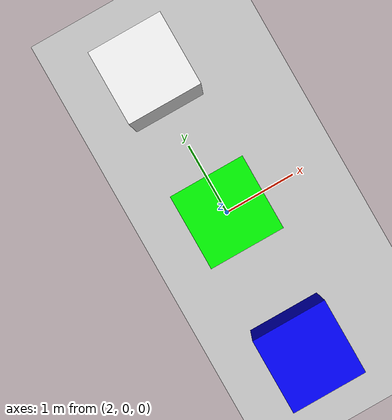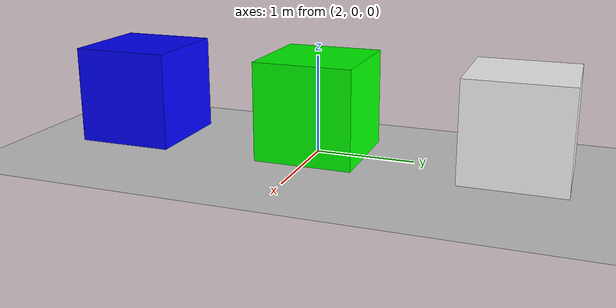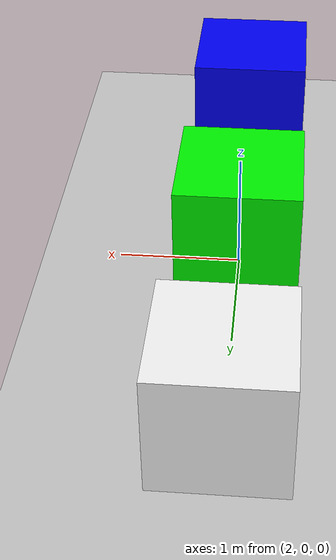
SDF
<?xml version="1.0"?>
<sdf version="1.6">
  <world name="empty">
    <physics name="1ms" type="ignored">
      <max_step_size>0.001</max_step_size>
      <real_time_factor>1.0</real_time_factor>
    </physics>
    <plugin
      filename="gz-sim-physics-system"
      name="gz::sim::systems::Physics">
    </plugin>
    <plugin
      filename="gz-sim-user-commands-system"
      name="gz::sim::systems::UserCommands">
    </plugin>
    <plugin
      filename="gz-sim-scene-broadcaster-system"
      name="gz::sim::systems::SceneBroadcaster">
    </plugin>
    <plugin
      filename="gz-sim-contact-system"
      name="gz::sim::systems::Contact">
    </plugin>
    <plugin
      filename="gz-sim-sensors-system"
      name="gz::sim::systems::Sensors">
      <render_engine>ogre2</render_engine>
    </plugin>

    <light type="directional" name="sun">
      <cast_shadows>true</cast_shadows>
      <pose>0 0 10 0 0 0</pose>
      <diffuse>0.8 0.8 0.8 1</diffuse>
      <specular>0.2 0.2 0.2 1</specular>
      <attenuation>
        <range>1000</range>
        <constant>0.9</constant>
        <linear>0.01</linear>
        <quadratic>0.001</quadratic>
      </attenuation>
      <direction>-0.5 0.1 -0.9</direction>
    </light>

    <model name="ground_plane">
      <static>true</static>
      <link name="link">
        <collision name="collision">
          <geometry>
            <plane>
              <normal>0 0 1</normal>
              <size>100 100</size>
            </plane>
          </geometry>
        </collision>
        <visual name="visual">
          <geometry>
            <plane>
              <normal>0 0 1</normal>
              <size>100 100</size>
            </plane>
          </geometry>
          <material>
            <ambient>0.8 0.8 0.8 1</ambient>
            <diffuse>0.8 0.8 0.8 1</diffuse>
            <specular>0.8 0.8 0.8 1</specular>
          </material>
        </visual>
      </link>
    </model>

    <model name="box_red">
      <pose>2 2 0.5 0 0 0</pose>
      <link name="box_link">
        <inertial>
          <inertia>
            <ixx>0.16666</ixx>
            <ixy>0</ixy>
            <ixz>0</ixz>
            <iyy>0.16666</iyy>
            <iyz>0</iyz>
            <izz>0.16666</izz>
          </inertia>
          <mass>1.0</mass>
        </inertial>
        <collision name="box_collision">
          <geometry>
            <box>
              <size>1 1 1</size>
            </box>
          </geometry>
        </collision>

        <visual name="box_visual">
          <geometry>
            <box>
              <size>1 1 1</size>
            </box>
          </geometry>
          <material>
            <ambient>1 1 1 1</ambient>
            <diffuse>1 1 1 1</diffuse>
            <specular>1 1 1 1</specular>
          </material>
        </visual>
      </link>
    </model>

    <model name="box_green">
      <pose>2 0 0.5 0 0 0</pose>
      <link name="box_link">
        <inertial>
          <inertia>
            <ixx>0.16666</ixx>
            <ixy>0</ixy>
            <ixz>0</ixz>
            <iyy>0.16666</iyy>
            <iyz>0</iyz>
            <izz>0.16666</izz>
          </inertia>
          <mass>1.0</mass>
        </inertial>
        <collision name="box_collision">
          <geometry>
            <box>
              <size>1 1 1</size>
            </box>
          </geometry>
        </collision>

        <visual name="box_visual">
          <geometry>
            <box>
              <size>1 1 1</size>
            </box>
          </geometry>
          <material>
            <ambient>0 1 0 1</ambient>
            <diffuse>0 1 0 1</diffuse>
            <specular>0 1 0 1</specular>
          </material>
        </visual>
      </link>
    </model>

    <model name="box_blue">
      <pose>2 -2 0.5 0 0 0</pose>
      <link name="box_link">
        <inertial>
          <inertia>
            <ixx>0.16666</ixx>
            <ixy>0</ixy>
            <ixz>0</ixz>
            <iyy>0.16666</iyy>
            <iyz>0</iyz>
            <izz>0.16666</izz>
          </inertia>
          <mass>1.0</mass>
        </inertial>
        <collision name="box_collision">
          <geometry>
            <box>
              <size>1 1 1</size>
            </box>
          </geometry>
        </collision>

        <visual name="box_visual">
          <geometry>
            <box>
              <size>1 1 1</size>
            </box>
          </geometry>
          <material>
            <ambient>0 0 1 1</ambient>
            <diffuse>0 0 1 1</diffuse>
            <specular>0 0 1 1</specular>
          </material>
        </visual>
      </link>
    </model>
  </world>
</sdf>
